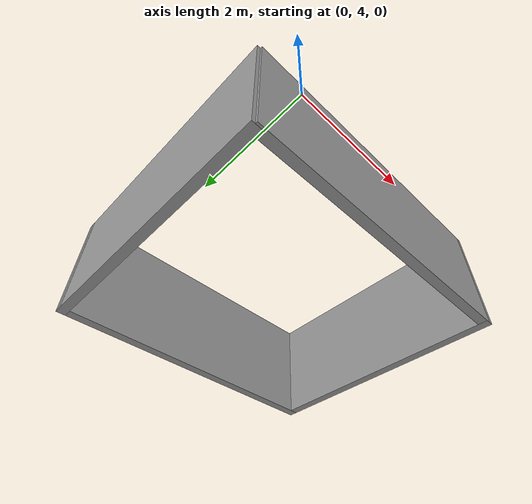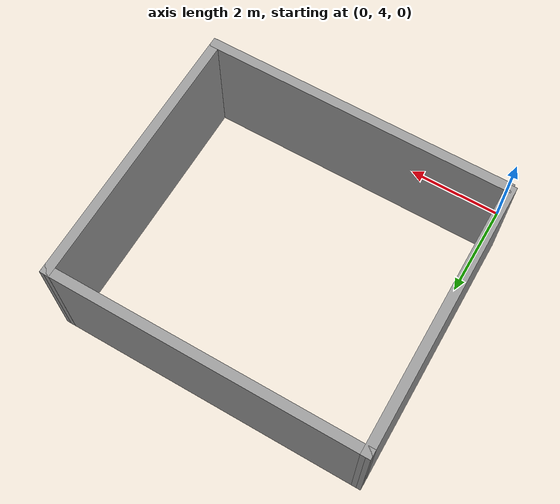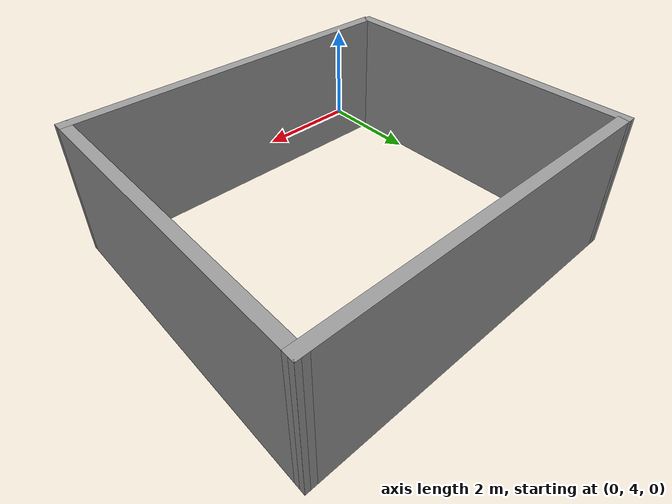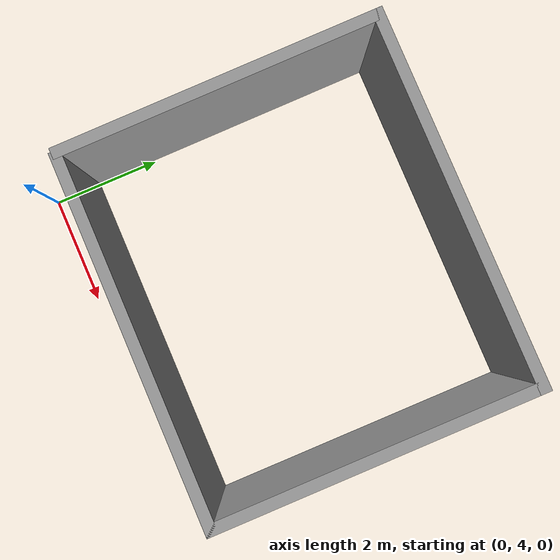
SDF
<?xml version='1.0'?>
<sdf version='1.4'>
  <model name='singleRoom'>
    <link name='Wall_14'>
      <collision name='Wall_14_Collision'>
        <geometry>
          <box>
            <size>5.79758 0.2 2.5</size>
          </box>
        </geometry>
        <pose>0 0 1.25 0 -0 0</pose>
      </collision>
      <visual name='Wall_14_Visual'>
        <pose>0 0 1.25 0 -0 0</pose>
        <geometry>
          <box>
            <size>5.79758 0.2 2.5</size>
          </box>
        </geometry>
        <material>
          <script>
            <uri>file://media/materials/scripts/gazebo.material</uri>
            <name>Gazebo/Grey</name>
          </script>
        </material>
      </visual>
      <velocity_decay>
        <linear>0</linear>
        <angular>0</angular>
      </velocity_decay>
      <pose>-0.152811 7.60684 0 0 -0 1.57912</pose>
    </link>
    <link name='Wall_15'>
      <collision name='Wall_15_Collision'>
        <geometry>
          <box>
            <size>6.66901 0.2 2.5</size>
          </box>
        </geometry>
        <pose>0 0 1.25 0 -0 0</pose>
      </collision>
      <visual name='Wall_15_Visual'>
        <pose>0 0 1.25 0 -0 0</pose>
        <geometry>
          <box>
            <size>6.66901 0.2 2.5</size>
          </box>
        </geometry>
        <material>
          <script>
            <uri>file://media/materials/scripts/gazebo.material</uri>
            <name>Gazebo/Grey</name>
          </script>
        </material>
      </visual>
      <velocity_decay>
        <linear>0</linear>
        <angular>0</angular>
      </velocity_decay>
      <pose>3.05839 10.4055 0 0 -0 0</pose>
    </link>
    <link name='Wall_16'>
      <collision name='Wall_16_Collision'>
        <geometry>
          <box>
            <size>5.83879 0.2 2.5</size>
          </box>
        </geometry>
        <pose>0 0 1.25 0 -0 0</pose>
      </collision>
      <visual name='Wall_16_Visual'>
        <pose>0 0 1.25 0 -0 0</pose>
        <geometry>
          <box>
            <size>5.83879 0.2 2.5</size>
          </box>
        </geometry>
        <material>
          <script>
            <uri>file://media/materials/scripts/gazebo.material</uri>
            <name>Gazebo/Grey</name>
          </script>
        </material>
      </visual>
      <velocity_decay>
        <linear>0</linear>
        <angular>0</angular>
      </velocity_decay>
      <pose>6.28355 7.58615 0 0 0 -1.57411</pose>
    </link>
    <link name='Wall_17'>
      <collision name='Wall_17_Collision'>
        <geometry>
          <box>
            <size>6.53169 0.2 2.5</size>
          </box>
        </geometry>
        <pose>0 0 1.25 0 -0 0</pose>
      </collision>
      <visual name='Wall_17_Visual'>
        <pose>0 0 1.25 0 -0 0</pose>
        <geometry>
          <box>
            <size>6.53169 0.2 2.5</size>
          </box>
        </geometry>
        <material>
          <script>
            <uri>file://media/materials/scripts/gazebo.material</uri>
            <name>Gazebo/Grey</name>
          </script>
        </material>
      </visual>
      <velocity_decay>
        <linear>0</linear>
        <angular>0</angular>
      </velocity_decay>
      <pose>3.10835 4.76678 0 0 -0 3.14159</pose>
    </link>
    <static>1</static>
  </model>
  <light name='sun' type='directional'>
	<cast_shadows>1</cast_shadows>
	<pose>0 0 10 0 -0 0</pose>
	<diffuse>0.8 0.8 0.8 1</diffuse>
	<specular>0.2 0.2 0.2 1</specular>
	<attenuation>
	  <range>1000</range>
	  <constant>0.9</constant>
	  <linear>0.01</linear>
	  <quadratic>0.001</quadratic>
	</attenuation>
	<direction>-0.5 0.1 -0.9</direction>
  </light>
</sdf>
